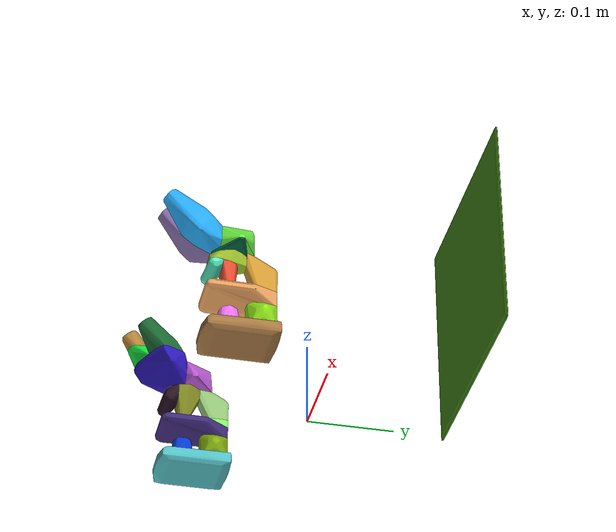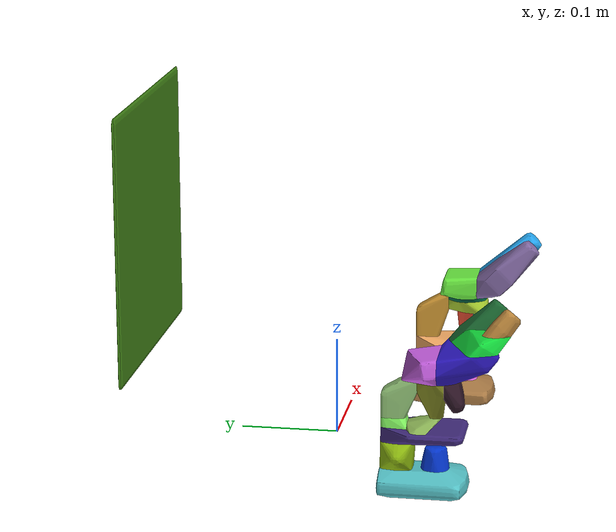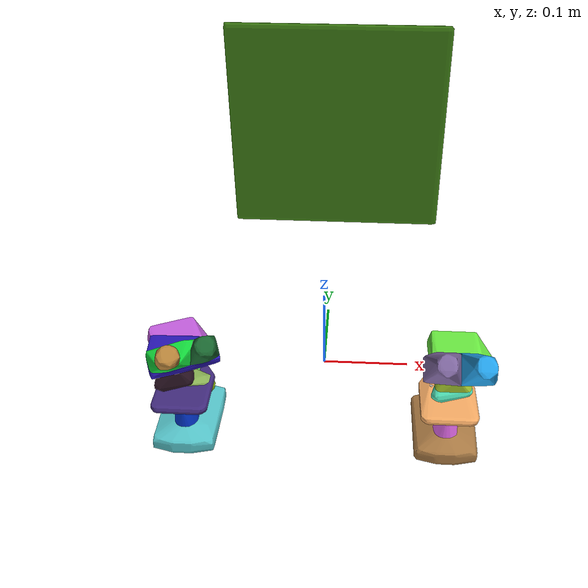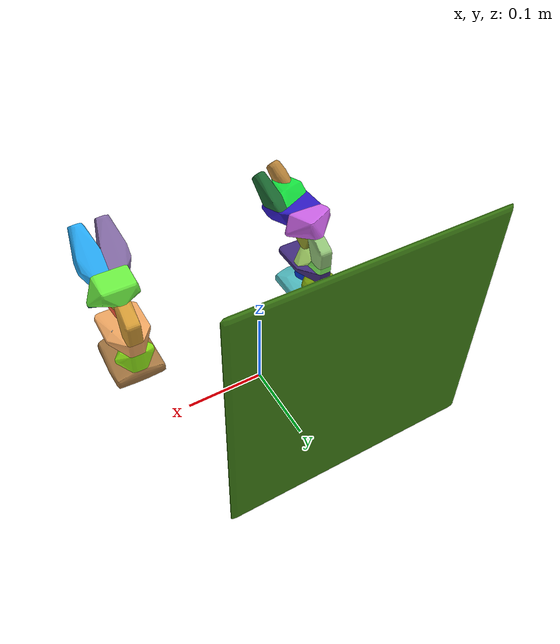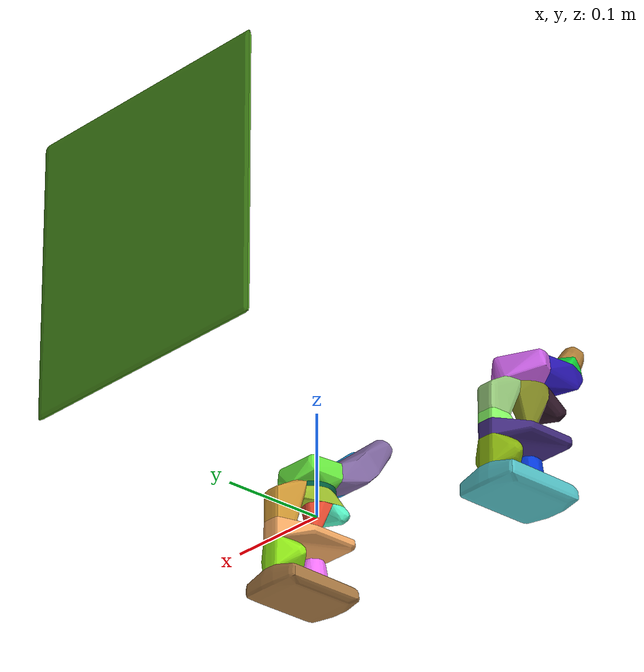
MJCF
<?xml version="1.0" ?>
<mujoco model="e90e3cf7446f4c0896b67dfcea9eca0e">
  <asset>
    <texture type="2d" name="material_0" file="material_0.png"/>
    <material name="material_0" texture="material_0" specular="0.4000000000000001" shininess="0.001"/>
    <mesh file="e90e3cf7446f4c0896b67dfcea9eca0e/e90e3cf7446f4c0896b67dfcea9eca0e.obj" scale="0.45957642574099117 0.45957642574099117 0.45957642574099117"/>
    <mesh file="e90e3cf7446f4c0896b67dfcea9eca0e/e90e3cf7446f4c0896b67dfcea9eca0e_collision_0.obj" scale="0.45957642574099117 0.45957642574099117 0.45957642574099117"/>
    <mesh file="e90e3cf7446f4c0896b67dfcea9eca0e/e90e3cf7446f4c0896b67dfcea9eca0e_collision_1.obj" scale="0.45957642574099117 0.45957642574099117 0.45957642574099117"/>
    <mesh file="e90e3cf7446f4c0896b67dfcea9eca0e/e90e3cf7446f4c0896b67dfcea9eca0e_collision_2.obj" scale="0.45957642574099117 0.45957642574099117 0.45957642574099117"/>
    <mesh file="e90e3cf7446f4c0896b67dfcea9eca0e/e90e3cf7446f4c0896b67dfcea9eca0e_collision_3.obj" scale="0.45957642574099117 0.45957642574099117 0.45957642574099117"/>
    <mesh file="e90e3cf7446f4c0896b67dfcea9eca0e/e90e3cf7446f4c0896b67dfcea9eca0e_collision_4.obj" scale="0.45957642574099117 0.45957642574099117 0.45957642574099117"/>
    <mesh file="e90e3cf7446f4c0896b67dfcea9eca0e/e90e3cf7446f4c0896b67dfcea9eca0e_collision_5.obj" scale="0.45957642574099117 0.45957642574099117 0.45957642574099117"/>
    <mesh file="e90e3cf7446f4c0896b67dfcea9eca0e/e90e3cf7446f4c0896b67dfcea9eca0e_collision_6.obj" scale="0.45957642574099117 0.45957642574099117 0.45957642574099117"/>
    <mesh file="e90e3cf7446f4c0896b67dfcea9eca0e/e90e3cf7446f4c0896b67dfcea9eca0e_collision_7.obj" scale="0.45957642574099117 0.45957642574099117 0.45957642574099117"/>
    <mesh file="e90e3cf7446f4c0896b67dfcea9eca0e/e90e3cf7446f4c0896b67dfcea9eca0e_collision_8.obj" scale="0.45957642574099117 0.45957642574099117 0.45957642574099117"/>
    <mesh file="e90e3cf7446f4c0896b67dfcea9eca0e/e90e3cf7446f4c0896b67dfcea9eca0e_collision_9.obj" scale="0.45957642574099117 0.45957642574099117 0.45957642574099117"/>
    <mesh file="e90e3cf7446f4c0896b67dfcea9eca0e/e90e3cf7446f4c0896b67dfcea9eca0e_collision_10.obj" scale="0.45957642574099117 0.45957642574099117 0.45957642574099117"/>
    <mesh file="e90e3cf7446f4c0896b67dfcea9eca0e/e90e3cf7446f4c0896b67dfcea9eca0e_collision_11.obj" scale="0.45957642574099117 0.45957642574099117 0.45957642574099117"/>
    <mesh file="e90e3cf7446f4c0896b67dfcea9eca0e/e90e3cf7446f4c0896b67dfcea9eca0e_collision_12.obj" scale="0.45957642574099117 0.45957642574099117 0.45957642574099117"/>
    <mesh file="e90e3cf7446f4c0896b67dfcea9eca0e/e90e3cf7446f4c0896b67dfcea9eca0e_collision_13.obj" scale="0.45957642574099117 0.45957642574099117 0.45957642574099117"/>
    <mesh file="e90e3cf7446f4c0896b67dfcea9eca0e/e90e3cf7446f4c0896b67dfcea9eca0e_collision_14.obj" scale="0.45957642574099117 0.45957642574099117 0.45957642574099117"/>
    <mesh file="e90e3cf7446f4c0896b67dfcea9eca0e/e90e3cf7446f4c0896b67dfcea9eca0e_collision_15.obj" scale="0.45957642574099117 0.45957642574099117 0.45957642574099117"/>
    <mesh file="e90e3cf7446f4c0896b67dfcea9eca0e/e90e3cf7446f4c0896b67dfcea9eca0e_collision_16.obj" scale="0.45957642574099117 0.45957642574099117 0.45957642574099117"/>
    <mesh file="e90e3cf7446f4c0896b67dfcea9eca0e/e90e3cf7446f4c0896b67dfcea9eca0e_collision_17.obj" scale="0.45957642574099117 0.45957642574099117 0.45957642574099117"/>
    <mesh file="e90e3cf7446f4c0896b67dfcea9eca0e/e90e3cf7446f4c0896b67dfcea9eca0e_collision_18.obj" scale="0.45957642574099117 0.45957642574099117 0.45957642574099117"/>
    <mesh file="e90e3cf7446f4c0896b67dfcea9eca0e/e90e3cf7446f4c0896b67dfcea9eca0e_collision_19.obj" scale="0.45957642574099117 0.45957642574099117 0.45957642574099117"/>
    <mesh file="e90e3cf7446f4c0896b67dfcea9eca0e/e90e3cf7446f4c0896b67dfcea9eca0e_collision_20.obj" scale="0.45957642574099117 0.45957642574099117 0.45957642574099117"/>
    <mesh file="e90e3cf7446f4c0896b67dfcea9eca0e/e90e3cf7446f4c0896b67dfcea9eca0e_collision_21.obj" scale="0.45957642574099117 0.45957642574099117 0.45957642574099117"/>
    <mesh file="e90e3cf7446f4c0896b67dfcea9eca0e/e90e3cf7446f4c0896b67dfcea9eca0e_collision_22.obj" scale="0.45957642574099117 0.45957642574099117 0.45957642574099117"/>
    <mesh file="e90e3cf7446f4c0896b67dfcea9eca0e/e90e3cf7446f4c0896b67dfcea9eca0e_collision_23.obj" scale="0.45957642574099117 0.45957642574099117 0.45957642574099117"/>
    <mesh file="e90e3cf7446f4c0896b67dfcea9eca0e/e90e3cf7446f4c0896b67dfcea9eca0e_collision_24.obj" scale="0.45957642574099117 0.45957642574099117 0.45957642574099117"/>
    <mesh file="e90e3cf7446f4c0896b67dfcea9eca0e/e90e3cf7446f4c0896b67dfcea9eca0e_collision_25.obj" scale="0.45957642574099117 0.45957642574099117 0.45957642574099117"/>
    <mesh file="e90e3cf7446f4c0896b67dfcea9eca0e/e90e3cf7446f4c0896b67dfcea9eca0e_collision_26.obj" scale="0.45957642574099117 0.45957642574099117 0.45957642574099117"/>
  </asset>
  <worldbody>
    <body name="e90e3cf7446f4c0896b67dfcea9eca0e">
      <inertial pos="0 0 0.1750" mass="0.02" diaginertia="0.000461 0.000401 0.000454"/>
      <geom material="material_0" mesh="e90e3cf7446f4c0896b67dfcea9eca0e" class="visual"/>
      <geom mesh="e90e3cf7446f4c0896b67dfcea9eca0e_collision_0" rgba="0.27821397577057194 0.5541654023538828 0.1012788165211409 1" class="collision"/>
      <geom mesh="e90e3cf7446f4c0896b67dfcea9eca0e_collision_1" rgba="0.9585368509581058 0.6674961520768978 0.39200857138657974 1" class="collision"/>
      <geom mesh="e90e3cf7446f4c0896b67dfcea9eca0e_collision_2" rgba="0.8360791217857139 0.6126873843896902 0.21091407702859832 1" class="collision"/>
      <geom mesh="e90e3cf7446f4c0896b67dfcea9eca0e_collision_3" rgba="0.5791451822742028 0.7748664673140632 0.47241924176173766 1" class="collision"/>
      <geom mesh="e90e3cf7446f4c0896b67dfcea9eca0e_collision_4" rgba="0.4247614852284035 0.9408136187576973 0.2588470384947349 1" class="collision"/>
      <geom mesh="e90e3cf7446f4c0896b67dfcea9eca0e_collision_5" rgba="0.6649259828747175 0.47861630458234994 0.2669507459903704 1" class="collision"/>
      <geom mesh="e90e3cf7446f4c0896b67dfcea9eca0e_collision_6" rgba="0.2595881313313927 0.1714930497408126 0.4954241520468138 1" class="collision"/>
      <geom mesh="e90e3cf7446f4c0896b67dfcea9eca0e_collision_7" rgba="0.33029727200976944 0.7619479524180061 0.7824235248445804 1" class="collision"/>
      <geom mesh="e90e3cf7446f4c0896b67dfcea9eca0e_collision_8" rgba="0.5396511328266153 0.7070775242377 0.05685471926700225 1" class="collision"/>
      <geom mesh="e90e3cf7446f4c0896b67dfcea9eca0e_collision_9" rgba="0.10323350187885239 0.409256851091653 0.19048676680325205 1" class="collision"/>
      <geom mesh="e90e3cf7446f4c0896b67dfcea9eca0e_collision_10" rgba="0.5054124936428028 0.5334637409082185 0.1310516690339314 1" class="collision"/>
      <geom mesh="e90e3cf7446f4c0896b67dfcea9eca0e_collision_11" rgba="0.5274387063349119 0.9894861807827224 0.39019447080524705 1" class="collision"/>
      <geom mesh="e90e3cf7446f4c0896b67dfcea9eca0e_collision_12" rgba="0.5539134877993069 0.7134443764909653 0.3401413565936545 1" class="collision"/>
      <geom mesh="e90e3cf7446f4c0896b67dfcea9eca0e_collision_13" rgba="0.018391460039820395 0.22673213969038297 0.8545130578253197 1" class="collision"/>
      <geom mesh="e90e3cf7446f4c0896b67dfcea9eca0e_collision_14" rgba="0.1688967473835693 0.07817577161441247 0.1391206960157455 1" class="collision"/>
      <geom mesh="e90e3cf7446f4c0896b67dfcea9eca0e_collision_15" rgba="0.9522317096510255 0.4462968189246017 0.9831714662728022 1" class="collision"/>
      <geom mesh="e90e3cf7446f4c0896b67dfcea9eca0e_collision_16" rgba="0.5907093141067045 0.9463325967810089 0.0995062296694148 1" class="collision"/>
      <geom mesh="e90e3cf7446f4c0896b67dfcea9eca0e_collision_17" rgba="0.15094211757858333 0.6718188975231335 0.9677958801406102 1" class="collision"/>
      <geom mesh="e90e3cf7446f4c0896b67dfcea9eca0e_collision_18" rgba="0.7889119364096883 0.37838107461960324 0.8950081874168402 1" class="collision"/>
      <geom mesh="e90e3cf7446f4c0896b67dfcea9eca0e_collision_19" rgba="0.5205979458880887 0.42191329271240663 0.6524952003949215 1" class="collision"/>
      <geom mesh="e90e3cf7446f4c0896b67dfcea9eca0e_collision_20" rgba="0.17627652108489933 0.09488783181861249 0.7486082689681601 1" class="collision"/>
      <geom mesh="e90e3cf7446f4c0896b67dfcea9eca0e_collision_21" rgba="0.011030637635096596 0.3920654654637006 0.25709574194847273 1" class="collision"/>
      <geom mesh="e90e3cf7446f4c0896b67dfcea9eca0e_collision_22" rgba="0.07457062522858493 0.8644359937317874 0.2369066420178625 1" class="collision"/>
      <geom mesh="e90e3cf7446f4c0896b67dfcea9eca0e_collision_23" rgba="0.7278752923763863 0.5222630091310658 0.2316229000865928 1" class="collision"/>
      <geom mesh="e90e3cf7446f4c0896b67dfcea9eca0e_collision_24" rgba="0.6368462655700965 0.7732980579815332 0.17540344813393927 1" class="collision"/>
      <geom mesh="e90e3cf7446f4c0896b67dfcea9eca0e_collision_25" rgba="0.3414629601786595 0.9495483050170928 0.7694079802127933 1" class="collision"/>
      <geom mesh="e90e3cf7446f4c0896b67dfcea9eca0e_collision_26" rgba="0.942380954194118 0.3118106235644613 0.20351998972898888 1" class="collision"/>
      <site class="grasppoint" pos="0 0 0.2800"/>
      <site class="grasppoint" pos="0 0 0.3062"/>
      <site class="grasppoint" pos="0 0 0.3325"/>
    </body>
  </worldbody>
  <compiler boundmass="0.015" boundinertia="1e-05" angle="radian"/>
  <default>
    <default class="visual">
      <geom group="2" type="mesh" contype="0" conaffinity="0" density="50"/>
    </default>
    <default class="collision">
      <geom type="mesh" density="50" friction="1.5 0.1 0.1" solimp="0.9 0.95 0.001" solref="0.02 1"/>
    </default>
    <default class="grasppoint">
      <site type="sphere" size="0.005" group="4" rgba="0 0 1 1"/>
    </default>
  </default>
</mujoco>
